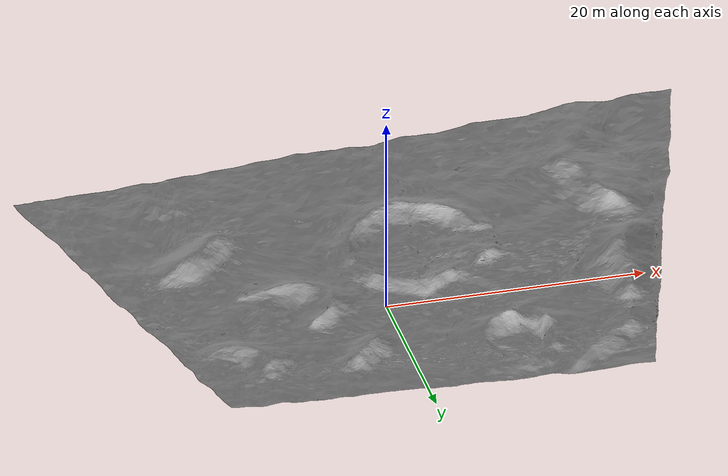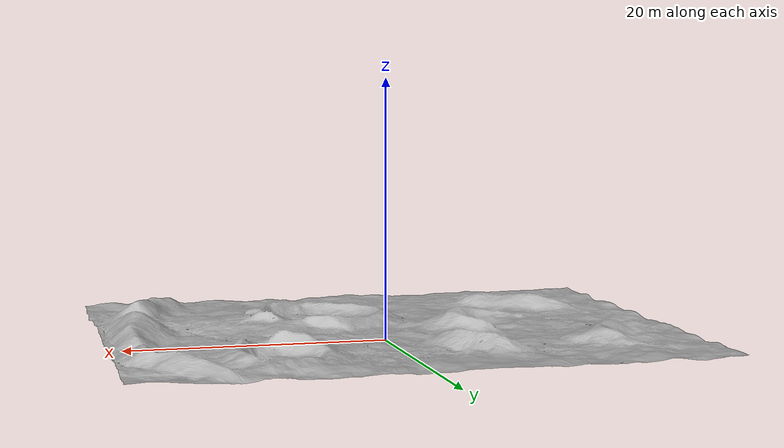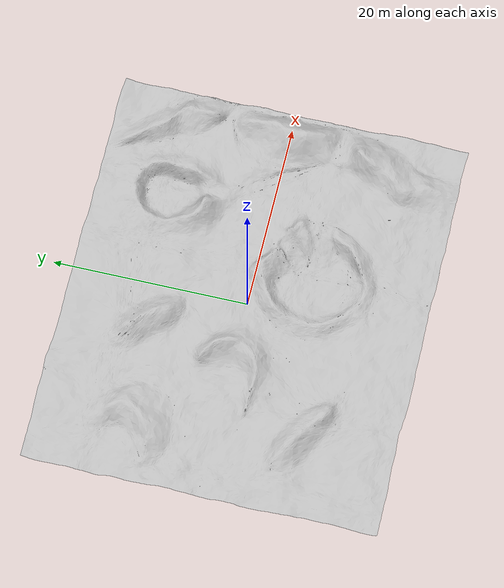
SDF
<?xml version="1.0"?>
<sdf version="1.6">
  <model name="marsyard2020_forest_terrain">
    <pose>0.0 0.0 0.0 1.5708 0.0 0.0 </pose>
    <static>true</static>

    <link name="marsyard_forest_terrain">

      <collision name="collision">
        <geometry>
          <mesh>
            <uri>model://marsyard2020_forest_terrain/meshes/terrain_compressed_norocks.obj</uri>
          </mesh>
        </geometry>
      </collision>

      <visual name="visual">
        <geometry>
          <mesh>
            <uri>model://marsyard2020_forest_terrain/meshes/terrain_compressed_norocks.obj</uri>
          </mesh>
        </geometry>
      </visual>
    </link>
  </model>
</sdf>
